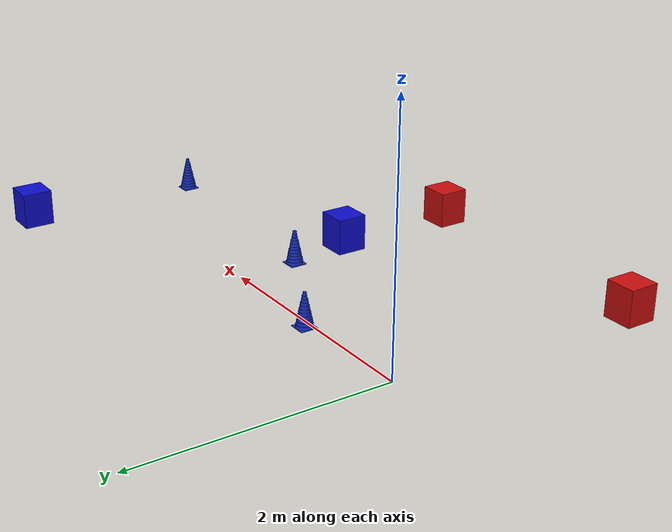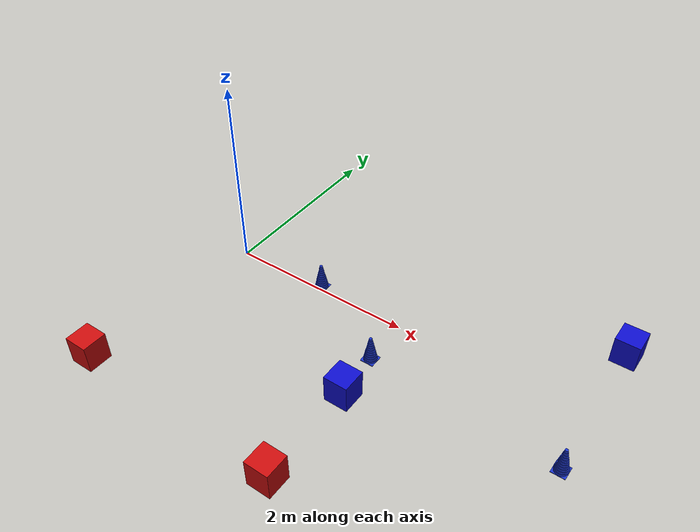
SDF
<sdf version="1.5">
 <world name="maze_6x5_v1_victimas">
  <physics type="ode">
   <max_step_size>0.001</max_step_size>
   <real_time_factor>1</real_time_factor>
   <real_time_update_rate>1000</real_time_update_rate>
   <gravity>0 0 -9.8</gravity>
  </physics>
  <plugin filename="gz-sim-physics-system" name="gz::sim::systems::Physics"/>
  <plugin filename="gz-sim-user-commands-system" name="gz::sim::systems::UserCommands"/>
  <plugin filename="gz-sim-scene-broadcaster-system" name="gz::sim::systems::SceneBroadcaster"/>
  <plugin filename="gz-sim-contact-system" name="gz::sim::systems::Contact"/>
  <plugin filename="gz-sim-sensors-system" name="gz::sim::systems::Sensors">
   <render_engine>ogre2</render_engine>
  </plugin>
  <plugin filename="gz-sim-imu-system" name="gz::sim::systems::Imu"/>
  <scene>
   <shadows>false</shadows>
   <ambient>0.2 0.2 0.2 1</ambient>
   <background>1 1 1 1</background>
   <grid>false</grid>
   <origin_visual>false</origin_visual>
  </scene>
  <include><uri>model://sun</uri></include>
  <light name="camera_spot_1_light" type="spot">
   <pose>-6 4 4 0 -1 -0.8</pose>
   <diffuse>0.5 0.5 0.5 1</diffuse>
   <specular>0.1 0.1 0.1 1</specular>
   <direction>0 0 -1</direction>
   <attenuation>
    <range>20</range>
    <constant>0.2</constant>
    <linear>0.01</linear>
    <quadratic>0.001</quadratic>
   </attenuation>
   <cast_shadows>0</cast_shadows>
   <spot><inner_angle>0.6</inner_angle><outer_angle>1</outer_angle><falloff>1</falloff></spot>
  </light>
  <light name="camera_spot_2_light" type="spot">
   <pose>5 -3 4 0 0.8 -0.6</pose>
   <diffuse>0.5 0.5 0.5 1</diffuse>
   <specular>0.1 0.1 0.1 1</specular>
   <direction>0 0 -1</direction>
   <attenuation>
    <range>20</range>
    <constant>0.3</constant>
    <linear>0.01</linear>
    <quadratic>0.001</quadratic>
   </attenuation>
   <cast_shadows>0</cast_shadows>
   <spot><inner_angle>0.6</inner_angle><outer_angle>1</outer_angle><falloff>1</falloff></spot>
  </light>
  <model name="marcas_color">
   <static>1</static>
   <link name="cuadrado_rojo_1">
    <pose>-0.1698 -2.0228 0.15 0 0 0</pose>
    <collision name="collision"><geometry><box><size>0.25 0.25 0.3</size></box></geometry></collision>
    <visual name="visual">
     <geometry><box><size>0.25 0.25 0.3</size></box></geometry>
     <material>
      <ambient>0.8 0.05 0.05 1</ambient>
      <diffuse>0.8 0.05 0.05 1</diffuse>
      <specular>0.1 0.1 0.1 1</specular>
     </material>
    </visual>
   </link>
   <link name="cuadrado_azul_1">
    <pose>2.0594 -1.0174 0.15 0 0 0</pose>
    <collision name="collision"><geometry><box><size>0.25 0.25 0.3</size></box></geometry></collision>
    <visual name="visual">
     <geometry><box><size>0.25 0.25 0.3</size></box></geometry>
     <material>
      <ambient>0.05 0.05 0.8 1</ambient>
      <diffuse>0.05 0.05 0.8 1</diffuse>
      <specular>0.1 0.1 0.1 1</specular>
     </material>
    </visual>
   </link>
   <link name="cuadrado_rojo_2">
    <pose>2.0734 -2.0864 0.15 0 0 0</pose>
    <collision name="collision"><geometry><box><size>0.25 0.25 0.3</size></box></geometry></collision>
    <visual name="visual">
     <geometry><box><size>0.25 0.25 0.3</size></box></geometry>
     <material>
      <ambient>0.8 0.05 0.05 1</ambient>
      <diffuse>0.8 0.05 0.05 1</diffuse>
      <specular>0.1 0.1 0.1 1</specular>
     </material>
    </visual>
   </link>
   <link name="cuadrado_azul_2">
    <pose>3.9811 0.9197 0.15 0 0 0</pose>
    <collision name="collision"><geometry><box><size>0.25 0.25 0.3</size></box></geometry></collision>
    <visual name="visual">
     <geometry><box><size>0.25 0.25 0.3</size></box></geometry>
     <material>
      <ambient>0.05 0.05 0.8 1</ambient>
      <diffuse>0.05 0.05 0.8 1</diffuse>
      <specular>0.1 0.1 0.1 1</specular>
     </material>
    </visual>
   </link>
  </model>
  <model name="senuelo_cono_frente">
   <static>1</static>
   <pose>1.0 0.05 0 0 0 0</pose>
   <link name="senuelo_cono_frente">
    <collision name="c0">
     <pose>0 0 0.0025 0 0 0</pose>
     <geometry><box><size>0.14 0.14 0.005</size></box></geometry>
    </collision>
    <visual name="v0">
     <pose>0 0 0.0025 0 0 0</pose>
     <geometry><box><size>0.14 0.14 0.005</size></box></geometry>
     <material>
      <ambient>0.10 0.20 0.80 1</ambient>
      <diffuse>0.10 0.20 0.80 1</diffuse>
      <specular>0.1 0.1 0.1 1</specular>
     </material>
    </visual>
    <collision name="c1">
     <pose>0 0 0.0175 0 0 0</pose>
     <geometry><cylinder><radius>0.0674</radius><length>0.0250</length></cylinder></geometry>
    </collision>
    <visual name="v1">
     <pose>0 0 0.0175 0 0 0</pose>
     <geometry><cylinder><radius>0.0674</radius><length>0.0250</length></cylinder></geometry>
     <material>
      <ambient>0.10 0.20 0.80 1</ambient>
      <diffuse>0.10 0.20 0.80 1</diffuse>
      <specular>0.1 0.1 0.1 1</specular>
     </material>
    </visual>
    <collision name="c2">
     <pose>0 0 0.0425 0 0 0</pose>
     <geometry><cylinder><radius>0.0622</radius><length>0.0250</length></cylinder></geometry>
    </collision>
    <visual name="v2">
     <pose>0 0 0.0425 0 0 0</pose>
     <geometry><cylinder><radius>0.0622</radius><length>0.0250</length></cylinder></geometry>
     <material>
      <ambient>0.10 0.20 0.80 1</ambient>
      <diffuse>0.10 0.20 0.80 1</diffuse>
      <specular>0.1 0.1 0.1 1</specular>
     </material>
    </visual>
    <collision name="c3">
     <pose>0 0 0.0675 0 0 0</pose>
     <geometry><cylinder><radius>0.0569</radius><length>0.0250</length></cylinder></geometry>
    </collision>
    <visual name="v3">
     <pose>0 0 0.0675 0 0 0</pose>
     <geometry><cylinder><radius>0.0569</radius><length>0.0250</length></cylinder></geometry>
     <material>
      <ambient>0.10 0.20 0.80 1</ambient>
      <diffuse>0.10 0.20 0.80 1</diffuse>
      <specular>0.1 0.1 0.1 1</specular>
     </material>
    </visual>
    <collision name="c4">
     <pose>0 0 0.0925 0 0 0</pose>
     <geometry><cylinder><radius>0.0517</radius><length>0.0250</length></cylinder></geometry>
    </collision>
    <visual name="v4">
     <pose>0 0 0.0925 0 0 0</pose>
     <geometry><cylinder><radius>0.0517</radius><length>0.0250</length></cylinder></geometry>
     <material>
      <ambient>0.10 0.20 0.80 1</ambient>
      <diffuse>0.10 0.20 0.80 1</diffuse>
      <specular>0.1 0.1 0.1 1</specular>
     </material>
    </visual>
    <collision name="c5">
     <pose>0 0 0.1175 0 0 0</pose>
     <geometry><cylinder><radius>0.0465</radius><length>0.0250</length></cylinder></geometry>
    </collision>
    <visual name="v5">
     <pose>0 0 0.1175 0 0 0</pose>
     <geometry><cylinder><radius>0.0465</radius><length>0.0250</length></cylinder></geometry>
     <material>
      <ambient>0.10 0.20 0.80 1</ambient>
      <diffuse>0.10 0.20 0.80 1</diffuse>
      <specular>0.1 0.1 0.1 1</specular>
     </material>
    </visual>
    <collision name="c6">
     <pose>0 0 0.1425 0 0 0</pose>
     <geometry><cylinder><radius>0.0413</radius><length>0.0250</length></cylinder></geometry>
    </collision>
    <visual name="v6">
     <pose>0 0 0.1425 0 0 0</pose>
     <geometry><cylinder><radius>0.0413</radius><length>0.0250</length></cylinder></geometry>
     <material>
      <ambient>0.10 0.20 0.80 1</ambient>
      <diffuse>0.10 0.20 0.80 1</diffuse>
      <specular>0.1 0.1 0.1 1</specular>
     </material>
    </visual>
    <collision name="c7">
     <pose>0 0 0.1675 0 0 0</pose>
     <geometry><cylinder><radius>0.0360</radius><length>0.0250</length></cylinder></geometry>
    </collision>
    <visual name="v7">
     <pose>0 0 0.1675 0 0 0</pose>
     <geometry><cylinder><radius>0.0360</radius><length>0.0250</length></cylinder></geometry>
     <material>
      <ambient>0.10 0.20 0.80 1</ambient>
      <diffuse>0.10 0.20 0.80 1</diffuse>
      <specular>0.1 0.1 0.1 1</specular>
     </material>
    </visual>
    <collision name="c8">
     <pose>0 0 0.1925 0 0 0</pose>
     <geometry><cylinder><radius>0.0308</radius><length>0.0250</length></cylinder></geometry>
    </collision>
    <visual name="v8">
     <pose>0 0 0.1925 0 0 0</pose>
     <geometry><cylinder><radius>0.0308</radius><length>0.0250</length></cylinder></geometry>
     <material>
      <ambient>0.10 0.20 0.80 1</ambient>
      <diffuse>0.10 0.20 0.80 1</diffuse>
      <specular>0.1 0.1 0.1 1</specular>
     </material>
    </visual>
    <collision name="c9">
     <pose>0 0 0.2175 0 0 0</pose>
     <geometry><cylinder><radius>0.0256</radius><length>0.0250</length></cylinder></geometry>
    </collision>
    <visual name="v9">
     <pose>0 0 0.2175 0 0 0</pose>
     <geometry><cylinder><radius>0.0256</radius><length>0.0250</length></cylinder></geometry>
     <material>
      <ambient>0.10 0.20 0.80 1</ambient>
      <diffuse>0.10 0.20 0.80 1</diffuse>
      <specular>0.1 0.1 0.1 1</specular>
     </material>
    </visual>
    <collision name="c10">
     <pose>0 0 0.2425 0 0 0</pose>
     <geometry><cylinder><radius>0.0203</radius><length>0.0250</length></cylinder></geometry>
    </collision>
    <visual name="v10">
     <pose>0 0 0.2425 0 0 0</pose>
     <geometry><cylinder><radius>0.0203</radius><length>0.0250</length></cylinder></geometry>
     <material>
      <ambient>0.10 0.20 0.80 1</ambient>
      <diffuse>0.10 0.20 0.80 1</diffuse>
      <specular>0.1 0.1 0.1 1</specular>
     </material>
    </visual>
    <collision name="c11">
     <pose>0 0 0.2675 0 0 0</pose>
     <geometry><cylinder><radius>0.0151</radius><length>0.0250</length></cylinder></geometry>
    </collision>
    <visual name="v11">
     <pose>0 0 0.2675 0 0 0</pose>
     <geometry><cylinder><radius>0.0151</radius><length>0.0250</length></cylinder></geometry>
     <material>
      <ambient>0.10 0.20 0.80 1</ambient>
      <diffuse>0.10 0.20 0.80 1</diffuse>
      <specular>0.1 0.1 0.1 1</specular>
     </material>
    </visual>
   </link>
  </model>
  <model name="senuelo_cono_salida">
   <static>1</static>
   <pose>2.0 -0.5 0 0 0 0</pose>
   <link name="senuelo_cono_salida">
    <collision name="c0">
     <pose>0 0 0.0025 0 0 0</pose>
     <geometry><box><size>0.14 0.14 0.005</size></box></geometry>
    </collision>
    <visual name="v0">
     <pose>0 0 0.0025 0 0 0</pose>
     <geometry><box><size>0.14 0.14 0.005</size></box></geometry>
     <material>
      <ambient>0.10 0.20 0.80 1</ambient>
      <diffuse>0.10 0.20 0.80 1</diffuse>
      <specular>0.1 0.1 0.1 1</specular>
     </material>
    </visual>
    <collision name="c1">
     <pose>0 0 0.0175 0 0 0</pose>
     <geometry><cylinder><radius>0.0674</radius><length>0.0250</length></cylinder></geometry>
    </collision>
    <visual name="v1">
     <pose>0 0 0.0175 0 0 0</pose>
     <geometry><cylinder><radius>0.0674</radius><length>0.0250</length></cylinder></geometry>
     <material>
      <ambient>0.10 0.20 0.80 1</ambient>
      <diffuse>0.10 0.20 0.80 1</diffuse>
      <specular>0.1 0.1 0.1 1</specular>
     </material>
    </visual>
    <collision name="c2">
     <pose>0 0 0.0425 0 0 0</pose>
     <geometry><cylinder><radius>0.0622</radius><length>0.0250</length></cylinder></geometry>
    </collision>
    <visual name="v2">
     <pose>0 0 0.0425 0 0 0</pose>
     <geometry><cylinder><radius>0.0622</radius><length>0.0250</length></cylinder></geometry>
     <material>
      <ambient>0.10 0.20 0.80 1</ambient>
      <diffuse>0.10 0.20 0.80 1</diffuse>
      <specular>0.1 0.1 0.1 1</specular>
     </material>
    </visual>
    <collision name="c3">
     <pose>0 0 0.0675 0 0 0</pose>
     <geometry><cylinder><radius>0.0569</radius><length>0.0250</length></cylinder></geometry>
    </collision>
    <visual name="v3">
     <pose>0 0 0.0675 0 0 0</pose>
     <geometry><cylinder><radius>0.0569</radius><length>0.0250</length></cylinder></geometry>
     <material>
      <ambient>0.10 0.20 0.80 1</ambient>
      <diffuse>0.10 0.20 0.80 1</diffuse>
      <specular>0.1 0.1 0.1 1</specular>
     </material>
    </visual>
    <collision name="c4">
     <pose>0 0 0.0925 0 0 0</pose>
     <geometry><cylinder><radius>0.0517</radius><length>0.0250</length></cylinder></geometry>
    </collision>
    <visual name="v4">
     <pose>0 0 0.0925 0 0 0</pose>
     <geometry><cylinder><radius>0.0517</radius><length>0.0250</length></cylinder></geometry>
     <material>
      <ambient>0.10 0.20 0.80 1</ambient>
      <diffuse>0.10 0.20 0.80 1</diffuse>
      <specular>0.1 0.1 0.1 1</specular>
     </material>
    </visual>
    <collision name="c5">
     <pose>0 0 0.1175 0 0 0</pose>
     <geometry><cylinder><radius>0.0465</radius><length>0.0250</length></cylinder></geometry>
    </collision>
    <visual name="v5">
     <pose>0 0 0.1175 0 0 0</pose>
     <geometry><cylinder><radius>0.0465</radius><length>0.0250</length></cylinder></geometry>
     <material>
      <ambient>0.10 0.20 0.80 1</ambient>
      <diffuse>0.10 0.20 0.80 1</diffuse>
      <specular>0.1 0.1 0.1 1</specular>
     </material>
    </visual>
    <collision name="c6">
     <pose>0 0 0.1425 0 0 0</pose>
     <geometry><cylinder><radius>0.0413</radius><length>0.0250</length></cylinder></geometry>
    </collision>
    <visual name="v6">
     <pose>0 0 0.1425 0 0 0</pose>
     <geometry><cylinder><radius>0.0413</radius><length>0.0250</length></cylinder></geometry>
     <material>
      <ambient>0.10 0.20 0.80 1</ambient>
      <diffuse>0.10 0.20 0.80 1</diffuse>
      <specular>0.1 0.1 0.1 1</specular>
     </material>
    </visual>
    <collision name="c7">
     <pose>0 0 0.1675 0 0 0</pose>
     <geometry><cylinder><radius>0.0360</radius><length>0.0250</length></cylinder></geometry>
    </collision>
    <visual name="v7">
     <pose>0 0 0.1675 0 0 0</pose>
     <geometry><cylinder><radius>0.0360</radius><length>0.0250</length></cylinder></geometry>
     <material>
      <ambient>0.10 0.20 0.80 1</ambient>
      <diffuse>0.10 0.20 0.80 1</diffuse>
      <specular>0.1 0.1 0.1 1</specular>
     </material>
    </visual>
    <collision name="c8">
     <pose>0 0 0.1925 0 0 0</pose>
     <geometry><cylinder><radius>0.0308</radius><length>0.0250</length></cylinder></geometry>
    </collision>
    <visual name="v8">
     <pose>0 0 0.1925 0 0 0</pose>
     <geometry><cylinder><radius>0.0308</radius><length>0.0250</length></cylinder></geometry>
     <material>
      <ambient>0.10 0.20 0.80 1</ambient>
      <diffuse>0.10 0.20 0.80 1</diffuse>
      <specular>0.1 0.1 0.1 1</specular>
     </material>
    </visual>
    <collision name="c9">
     <pose>0 0 0.2175 0 0 0</pose>
     <geometry><cylinder><radius>0.0256</radius><length>0.0250</length></cylinder></geometry>
    </collision>
    <visual name="v9">
     <pose>0 0 0.2175 0 0 0</pose>
     <geometry><cylinder><radius>0.0256</radius><length>0.0250</length></cylinder></geometry>
     <material>
      <ambient>0.10 0.20 0.80 1</ambient>
      <diffuse>0.10 0.20 0.80 1</diffuse>
      <specular>0.1 0.1 0.1 1</specular>
     </material>
    </visual>
    <collision name="c10">
     <pose>0 0 0.2425 0 0 0</pose>
     <geometry><cylinder><radius>0.0203</radius><length>0.0250</length></cylinder></geometry>
    </collision>
    <visual name="v10">
     <pose>0 0 0.2425 0 0 0</pose>
     <geometry><cylinder><radius>0.0203</radius><length>0.0250</length></cylinder></geometry>
     <material>
      <ambient>0.10 0.20 0.80 1</ambient>
      <diffuse>0.10 0.20 0.80 1</diffuse>
      <specular>0.1 0.1 0.1 1</specular>
     </material>
    </visual>
    <collision name="c11">
     <pose>0 0 0.2675 0 0 0</pose>
     <geometry><cylinder><radius>0.0151</radius><length>0.0250</length></cylinder></geometry>
    </collision>
    <visual name="v11">
     <pose>0 0 0.2675 0 0 0</pose>
     <geometry><cylinder><radius>0.0151</radius><length>0.0250</length></cylinder></geometry>
     <material>
      <ambient>0.10 0.20 0.80 1</ambient>
      <diffuse>0.10 0.20 0.80 1</diffuse>
      <specular>0.1 0.1 0.1 1</specular>
     </material>
    </visual>
   </link>
  </model>
  <model name="senuelo_cono_pasillo">
   <static>1</static>
   <pose>4.0 -0.6 0 0 0 0</pose>
   <link name="senuelo_cono_pasillo">
    <collision name="c0">
     <pose>0 0 0.0025 0 0 0</pose>
     <geometry><box><size>0.14 0.14 0.005</size></box></geometry>
    </collision>
    <visual name="v0">
     <pose>0 0 0.0025 0 0 0</pose>
     <geometry><box><size>0.14 0.14 0.005</size></box></geometry>
     <material>
      <ambient>0.10 0.20 0.80 1</ambient>
      <diffuse>0.10 0.20 0.80 1</diffuse>
      <specular>0.1 0.1 0.1 1</specular>
     </material>
    </visual>
    <collision name="c1">
     <pose>0 0 0.0175 0 0 0</pose>
     <geometry><cylinder><radius>0.0674</radius><length>0.0250</length></cylinder></geometry>
    </collision>
    <visual name="v1">
     <pose>0 0 0.0175 0 0 0</pose>
     <geometry><cylinder><radius>0.0674</radius><length>0.0250</length></cylinder></geometry>
     <material>
      <ambient>0.10 0.20 0.80 1</ambient>
      <diffuse>0.10 0.20 0.80 1</diffuse>
      <specular>0.1 0.1 0.1 1</specular>
     </material>
    </visual>
    <collision name="c2">
     <pose>0 0 0.0425 0 0 0</pose>
     <geometry><cylinder><radius>0.0622</radius><length>0.0250</length></cylinder></geometry>
    </collision>
    <visual name="v2">
     <pose>0 0 0.0425 0 0 0</pose>
     <geometry><cylinder><radius>0.0622</radius><length>0.0250</length></cylinder></geometry>
     <material>
      <ambient>0.10 0.20 0.80 1</ambient>
      <diffuse>0.10 0.20 0.80 1</diffuse>
      <specular>0.1 0.1 0.1 1</specular>
     </material>
    </visual>
    <collision name="c3">
     <pose>0 0 0.0675 0 0 0</pose>
     <geometry><cylinder><radius>0.0569</radius><length>0.0250</length></cylinder></geometry>
    </collision>
    <visual name="v3">
     <pose>0 0 0.0675 0 0 0</pose>
     <geometry><cylinder><radius>0.0569</radius><length>0.0250</length></cylinder></geometry>
     <material>
      <ambient>0.10 0.20 0.80 1</ambient>
      <diffuse>0.10 0.20 0.80 1</diffuse>
      <specular>0.1 0.1 0.1 1</specular>
     </material>
    </visual>
    <collision name="c4">
     <pose>0 0 0.0925 0 0 0</pose>
     <geometry><cylinder><radius>0.0517</radius><length>0.0250</length></cylinder></geometry>
    </collision>
    <visual name="v4">
     <pose>0 0 0.0925 0 0 0</pose>
     <geometry><cylinder><radius>0.0517</radius><length>0.0250</length></cylinder></geometry>
     <material>
      <ambient>0.10 0.20 0.80 1</ambient>
      <diffuse>0.10 0.20 0.80 1</diffuse>
      <specular>0.1 0.1 0.1 1</specular>
     </material>
    </visual>
    <collision name="c5">
     <pose>0 0 0.1175 0 0 0</pose>
     <geometry><cylinder><radius>0.0465</radius><length>0.0250</length></cylinder></geometry>
    </collision>
    <visual name="v5">
     <pose>0 0 0.1175 0 0 0</pose>
     <geometry><cylinder><radius>0.0465</radius><length>0.0250</length></cylinder></geometry>
     <material>
      <ambient>0.10 0.20 0.80 1</ambient>
      <diffuse>0.10 0.20 0.80 1</diffuse>
      <specular>0.1 0.1 0.1 1</specular>
     </material>
    </visual>
    <collision name="c6">
     <pose>0 0 0.1425 0 0 0</pose>
     <geometry><cylinder><radius>0.0413</radius><length>0.0250</length></cylinder></geometry>
    </collision>
    <visual name="v6">
     <pose>0 0 0.1425 0 0 0</pose>
     <geometry><cylinder><radius>0.0413</radius><length>0.0250</length></cylinder></geometry>
     <material>
      <ambient>0.10 0.20 0.80 1</ambient>
      <diffuse>0.10 0.20 0.80 1</diffuse>
      <specular>0.1 0.1 0.1 1</specular>
     </material>
    </visual>
    <collision name="c7">
     <pose>0 0 0.1675 0 0 0</pose>
     <geometry><cylinder><radius>0.0360</radius><length>0.0250</length></cylinder></geometry>
    </collision>
    <visual name="v7">
     <pose>0 0 0.1675 0 0 0</pose>
     <geometry><cylinder><radius>0.0360</radius><length>0.0250</length></cylinder></geometry>
     <material>
      <ambient>0.10 0.20 0.80 1</ambient>
      <diffuse>0.10 0.20 0.80 1</diffuse>
      <specular>0.1 0.1 0.1 1</specular>
     </material>
    </visual>
    <collision name="c8">
     <pose>0 0 0.1925 0 0 0</pose>
     <geometry><cylinder><radius>0.0308</radius><length>0.0250</length></cylinder></geometry>
    </collision>
    <visual name="v8">
     <pose>0 0 0.1925 0 0 0</pose>
     <geometry><cylinder><radius>0.0308</radius><length>0.0250</length></cylinder></geometry>
     <material>
      <ambient>0.10 0.20 0.80 1</ambient>
      <diffuse>0.10 0.20 0.80 1</diffuse>
      <specular>0.1 0.1 0.1 1</specular>
     </material>
    </visual>
    <collision name="c9">
     <pose>0 0 0.2175 0 0 0</pose>
     <geometry><cylinder><radius>0.0256</radius><length>0.0250</length></cylinder></geometry>
    </collision>
    <visual name="v9">
     <pose>0 0 0.2175 0 0 0</pose>
     <geometry><cylinder><radius>0.0256</radius><length>0.0250</length></cylinder></geometry>
     <material>
      <ambient>0.10 0.20 0.80 1</ambient>
      <diffuse>0.10 0.20 0.80 1</diffuse>
      <specular>0.1 0.1 0.1 1</specular>
     </material>
    </visual>
    <collision name="c10">
     <pose>0 0 0.2425 0 0 0</pose>
     <geometry><cylinder><radius>0.0203</radius><length>0.0250</length></cylinder></geometry>
    </collision>
    <visual name="v10">
     <pose>0 0 0.2425 0 0 0</pose>
     <geometry><cylinder><radius>0.0203</radius><length>0.0250</length></cylinder></geometry>
     <material>
      <ambient>0.10 0.20 0.80 1</ambient>
      <diffuse>0.10 0.20 0.80 1</diffuse>
      <specular>0.1 0.1 0.1 1</specular>
     </material>
    </visual>
    <collision name="c11">
     <pose>0 0 0.2675 0 0 0</pose>
     <geometry><cylinder><radius>0.0151</radius><length>0.0250</length></cylinder></geometry>
    </collision>
    <visual name="v11">
     <pose>0 0 0.2675 0 0 0</pose>
     <geometry><cylinder><radius>0.0151</radius><length>0.0250</length></cylinder></geometry>
     <material>
      <ambient>0.10 0.20 0.80 1</ambient>
      <diffuse>0.10 0.20 0.80 1</diffuse>
      <specular>0.1 0.1 0.1 1</specular>
     </material>
    </visual>
   </link>
  </model>
 </world>
</sdf>
